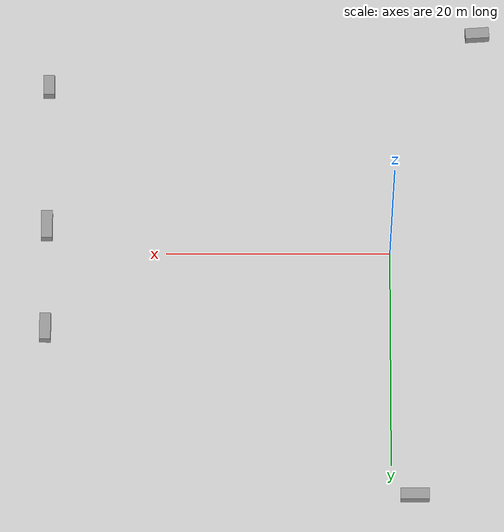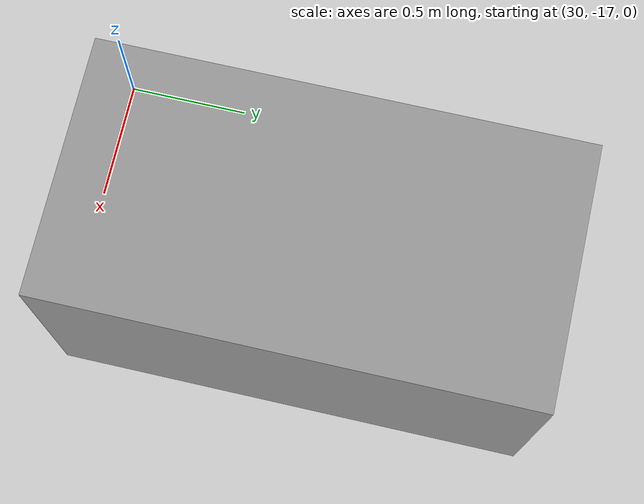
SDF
<sdf version="1.7">
 <world name="default">
  <model name="ground_plane">
   <static>1</static>
   <link name="link">
    <collision name="collision">
     <geometry><plane><normal>0 0 1</normal><size>100 100</size></plane></geometry>
     <surface>
      <contact><collide_bitmask>65535</collide_bitmask></contact>
      <friction><ode><mu>100</mu><mu2>50</mu2></ode></friction>
     </surface>
    </collision>
    <visual name="visual">
     <cast_shadows>0</cast_shadows>
     <geometry><plane><normal>0 0 1</normal><size>100 100</size></plane></geometry>
     <material>
      <script><uri>file://media/materials/scripts/gazebo.material</uri><name>Gazebo/Grey</name></script>
     </material>
    </visual>
   </link>
  </model>
  <light name="sun" type="directional">
   <pose>0 0 10 0 -0 0</pose>
   <diffuse>0.8 0.8 0.8 1</diffuse>
   <specular>0.2 0.2 0.2 1</specular>
   <attenuation>
    <range>1000</range>
    <constant>0.9</constant>
    <linear>0.01</linear>
    <quadratic>0.001</quadratic>
   </attenuation>
   <direction>-0.5 0.1 -0.9</direction>
   <spot><inner_angle>0</inner_angle><outer_angle>0</outer_angle><falloff>0</falloff></spot>
  </light>
  <plugin name="gazebo_map_publisher" filename="libgazebo_map_publisher.so"/>
  <gravity>0 0 -9.8</gravity>
  <magnetic_field>6e-06 2.3e-05 -4.2e-05</magnetic_field>
  <atmosphere type="adiabatic"/>
  <physics type="ode">
   <max_step_size>0.001</max_step_size>
   <real_time_factor>1</real_time_factor>
   <real_time_update_rate>1000</real_time_update_rate>
  </physics>
  <scene><ambient>0.4 0.4 0.4 1</ambient><background>0.7 0.7 0.7 1</background><shadows>1</shadows></scene>
  <spherical_coordinates>
   <surface_model>EARTH_WGS84</surface_model>
   <latitude_deg>0</latitude_deg>
   <longitude_deg>0</longitude_deg>
   <elevation>0</elevation>
   <heading_deg>0</heading_deg>
  </spherical_coordinates>
  <model name="unit_box">
   <pose>-8.03846 -21.1641 0.499993 4e-06 -5e-06 0.066183</pose>
   <link name="link">
    <inertial>
     <mass>1</mass>
     <inertia>
      <ixx>0.166667</ixx>
      <ixy>0</ixy>
      <ixz>0</ixz>
      <iyy>0.166667</iyy>
      <iyz>0</iyz>
      <izz>0.166667</izz>
     </inertia>
    </inertial>
    <collision name="collision"><geometry><box><size>2.14428 1 1</size></box></geometry></collision>
    <visual name="visual">
     <geometry><box><size>2.14428 1 1</size></box></geometry>
     <material>
      <script><name>Gazebo/Grey</name><uri>file://media/materials/scripts/gazebo.material</uri></script>
     </material>
    </visual>
   </link>
  </model>
  <model name="unit_box_0">
   <pose>-2.04923 22.8737 0.499932 0 -5.4e-05 3e-06</pose>
   <link name="link">
    <inertial>
     <mass>1</mass>
     <inertia>
      <ixx>0.166667</ixx>
      <ixy>0</ixy>
      <ixz>0</ixz>
      <iyy>0.166667</iyy>
      <iyz>0</iyz>
      <izz>0.166667</izz>
     </inertia>
    </inertial>
    <collision name="collision"><geometry><box><size>2.53157 1 1</size></box></geometry></collision>
    <visual name="visual">
     <geometry><box><size>2.53157 1 1</size></box></geometry>
     <material>
      <script><name>Gazebo/Grey</name><uri>file://media/materials/scripts/gazebo.material</uri></script>
     </material>
    </visual>
   </link>
  </model>
  <model name="unit_box_1">
   <pose>30.7218 7.21596 0.499996 0 -9e-06 -0.005112</pose>
   <link name="link">
    <inertial>
     <mass>1</mass>
     <inertia>
      <ixx>0.166667</ixx>
      <ixy>0</ixy>
      <ixz>0</ixz>
      <iyy>0.166667</iyy>
      <iyz>0</iyz>
      <izz>0.166667</izz>
     </inertia>
    </inertial>
    <collision name="collision"><geometry><box><size>1 2.43999 1</size></box></geometry></collision>
    <visual name="visual">
     <geometry><box><size>1 2.43999 1</size></box></geometry>
     <material>
      <script><name>Gazebo/Grey</name><uri>file://media/materials/scripts/gazebo.material</uri></script>
     </material>
    </visual>
   </link>
  </model>
  <model name="unit_box_2">
   <pose>30.716 -2.51044 0.5 -0.096133 1.57079 3.04526</pose>
   <link name="link">
    <inertial>
     <mass>1</mass>
     <inertia>
      <ixx>0.166667</ixx>
      <ixy>0</ixy>
      <ixz>0</ixz>
      <iyy>0.166667</iyy>
      <iyz>0</iyz>
      <izz>0.166667</izz>
     </inertia>
    </inertial>
    <collision name="collision"><geometry><box><size>1 2.57599 1</size></box></geometry></collision>
    <visual name="visual">
     <geometry><box><size>1 2.57599 1</size></box></geometry>
     <material>
      <script><name>Gazebo/Grey</name><uri>file://media/materials/scripts/gazebo.material</uri></script>
     </material>
    </visual>
   </link>
  </model>
  <model name="unit_box_3">
   <pose>30.7156 -16.0176 0.499995 0 9e-06 0</pose>
   <link name="link">
    <inertial>
     <mass>1</mass>
     <inertia>
      <ixx>0.166667</ixx>
      <ixy>0</ixy>
      <ixz>0</ixz>
      <iyy>0.166667</iyy>
      <iyz>0</iyz>
      <izz>0.166667</izz>
     </inertia>
    </inertial>
    <collision name="collision"><geometry><box><size>1 1.88788 1</size></box></geometry></collision>
    <visual name="visual">
     <geometry><box><size>1 1.88788 1</size></box></geometry>
     <material>
      <script><name>Gazebo/Grey</name><uri>file://media/materials/scripts/gazebo.material</uri></script>
     </material>
    </visual>
   </link>
  </model>
 </world>
</sdf>
